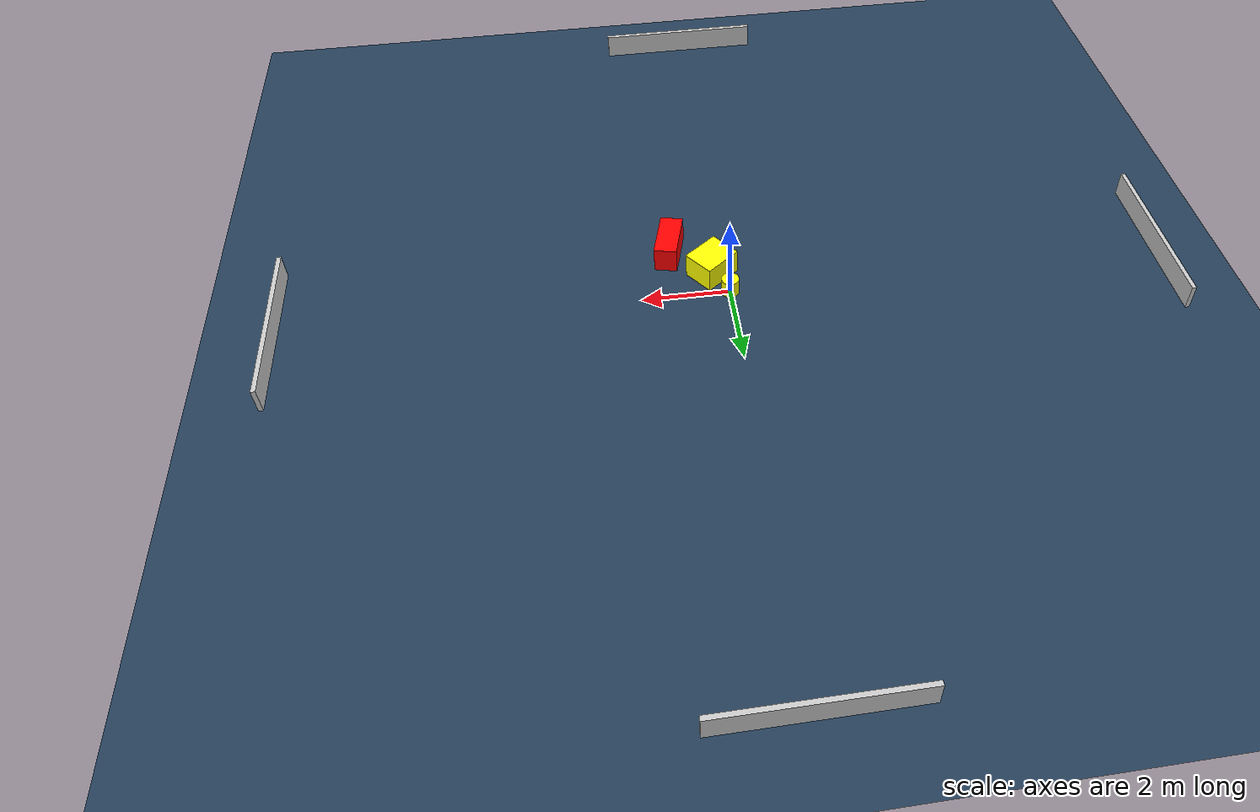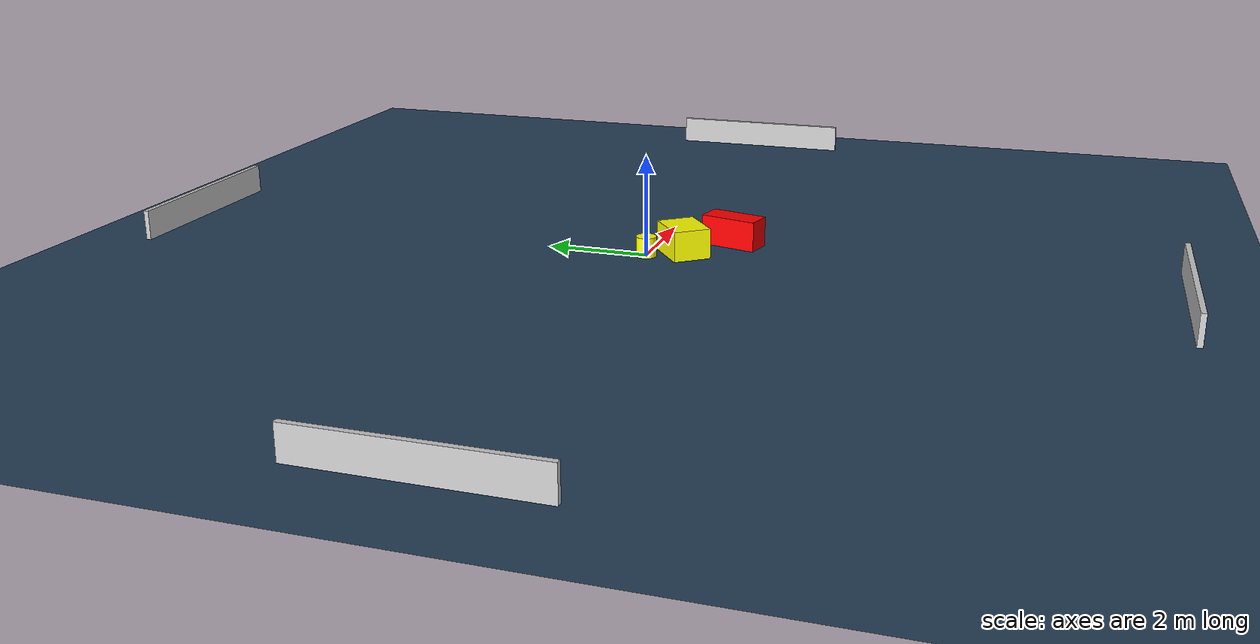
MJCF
<?xml version="1.0" ?>
<mujoco model="generated_environment">
  <option timestep="0.01" integrator="RK4" cone="elliptic"/>
  <default>
    <geom density="1"/>
  </default>
  <asset>
    <texture builtin="gradient" height="3072" name="skybox" rgb1="0.3 0.5 0.7" rgb2="0 0 0" type="skybox" width="512"/>
    <texture builtin="checker" height="300" name="groundplane" rgb1="0.2 0.3 0.4" rgb2="0.1 0.2 0.3" type="2d" width="300"/>
    <material name="groundplane" reflectance="0.2" texrepeat="5 5" texture="groundplane"/>
  </asset>
  <worldbody>
    <light dir="0 0 -1" directional="true" pos="0 0 1.5"/>
    <geom condim="3" friction="0.5 0.005 0.001" material="groundplane" name="floor" pos="0 0 0" size="0 0 0.05" type="plane"/>
    <body name="walls">
      <geom name="wall_1" condim="4" pos="-10.0 0.0 0.3" rgba="0.800000011920929 0.800000011920929 0.800000011920929 1.0" size="0.05 2.0 0.3" type="box"/>
      <geom name="wall_2" condim="4" pos="10.0 0.0 0.3" rgba="0.800000011920929 0.800000011920929 0.800000011920929 1.0" size="0.05 2.0 0.3" type="box"/>
      <geom name="wall_3" condim="4" pos="0.0 -10.0 0.3" rgba="0.800000011920929 0.800000011920929 0.800000011920929 1.0" size="2.0 0.05 0.3" type="box"/>
      <geom name="wall_4" condim="4" pos="0.0 10.0 0.3" rgba="0.800000011920929 0.800000011920929 0.800000011920929 1.0" size="2.0 0.05 0.3" type="box"/>
    </body>
    <body name="robot">
      <joint name="joint_x" type="slide" pos="0 0 0" axis="1 0 0"/>
      <joint name="joint_y" type="slide" pos="0 0 0" axis="0 1 0"/>
      <geom name="robot" type="cylinder" pos="0.0 0.0 0.2" size="0.2 0.2 0.0" mass="5.0" friction="1.0 0.005 0.0001" condim="4" rgba="1.0 1.0 0.0 1.0"/>
    </body>
    <body name="obstacle_1_movable">
      <geom name="obstacle_1_movable" condim="4" pos="0.32701107198892515 -0.6667469845527676 0.3" euler="0 0 307.74529911168935" friction="0.0 0.005 0.001" rgba="1.0 1.0 0.0 1.0" size="0.3770756851514058 0.4527307896131167 0.3" type="box" mass="0.1"/>
      <joint type="free"/>
    </body>
    <body name="obstacle_2_static">
      <geom name="obstacle_2_static" condim="4" pos="1.225810642171606 -1.4530980180151847 0.3" euler="0 0 75.86898778789723" friction="0.0 0.005 0.001" rgba="1.0 0.0 0.0 1.0" size="0.5709668019050912 0.2588908711026848 0.3" type="box"/>
    </body>
  </worldbody>
  <actuator>
    <motor name="actuator_x" joint="joint_x" gear="1" ctrlrange="-1 1"/>
    <motor name="actuator_y" joint="joint_y" gear="1" ctrlrange="-1 1"/>
  </actuator>
</mujoco>
